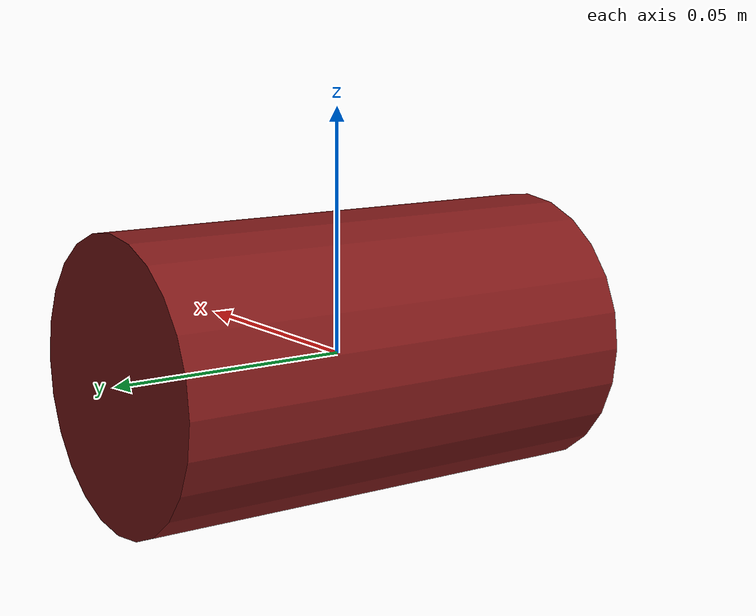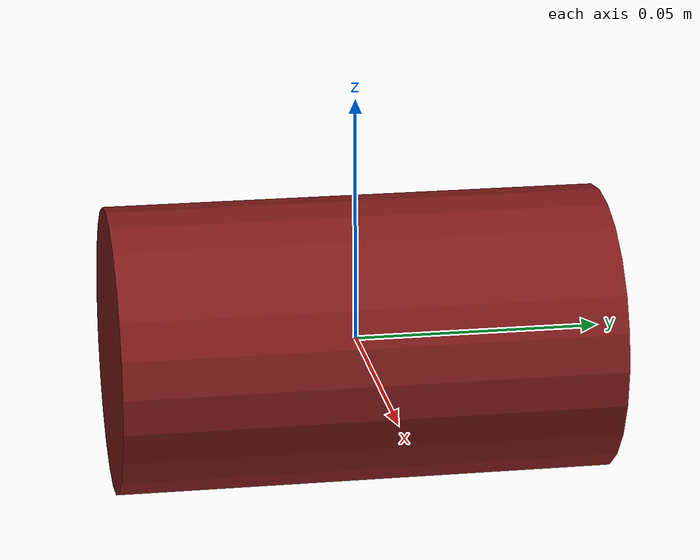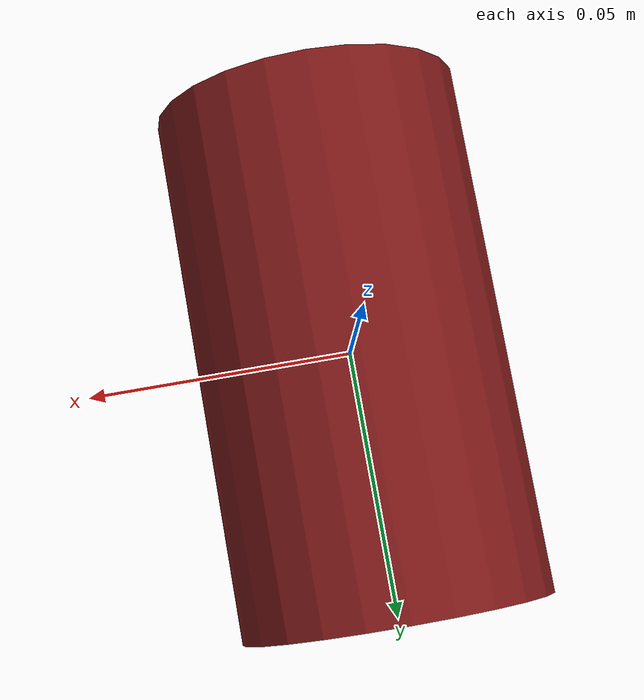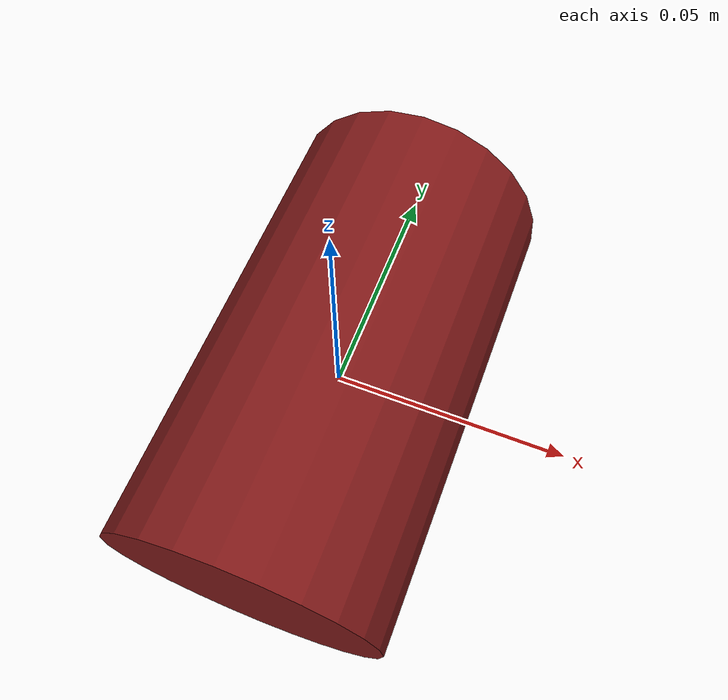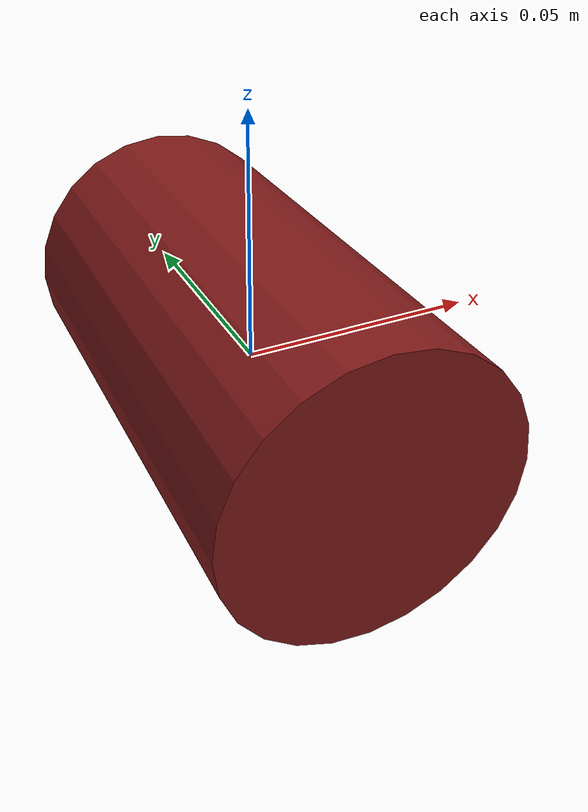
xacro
<?xml version="1.0"?>
<robot name="left_electric_gripper" xmlns:xacro="http://wiki.ros.org/xacro">
    <link name="left_gripper_base">
        <collision>
            <origin rpy="-1.57079632679 3.14159265359 0" xyz="0.0 0.0 0"/>
            <geometry>
                <cylinder length="0.1" radius="0.029"/>
            </geometry>
            <material name="darkred">
                <color rgba=".5 .1 .1 1"/>
            </material>
        </collision>
        <visual>
            <origin rpy="-1.57079632679 3.14159265359 0" xyz="0.0 0.0 0"/>
            <geometry>
                <cylinder length="0.1" radius="0.029"/>
            </geometry>
            <material name="darkred">
                <color rgba=".5 .1 .1 1"/>
            </material>
        </visual>
        <inertial>
            <origin rpy="-1.57079632679 3.14159265359 0" xyz="0.0 0.0 0.0"/>
            <mass value="0.3"/>
            <inertia ixx="2e-08" ixy="0" ixz="0" iyy="3e-08" iyz="0" izz="2e-08"/>
        </inertial>
    </link>
    <link name="left_gripper">
        <inertial>
            <origin rpy="0 0 0" xyz="0 0 0"/>
            <mass value="0.0001"/>
            <inertia ixx="0" ixy="0" ixz="0" iyy="0" iyz="0" izz="0.0"/>
        </inertial>
    </link>
    <joint name="left_endpoint" type="fixed">
        <origin rpy="0 0 0" xyz="0 0 0.1327"/>
        <parent link="left_gripper_base"/>
        <child link="left_gripper"/>
    </joint>

</robot>
